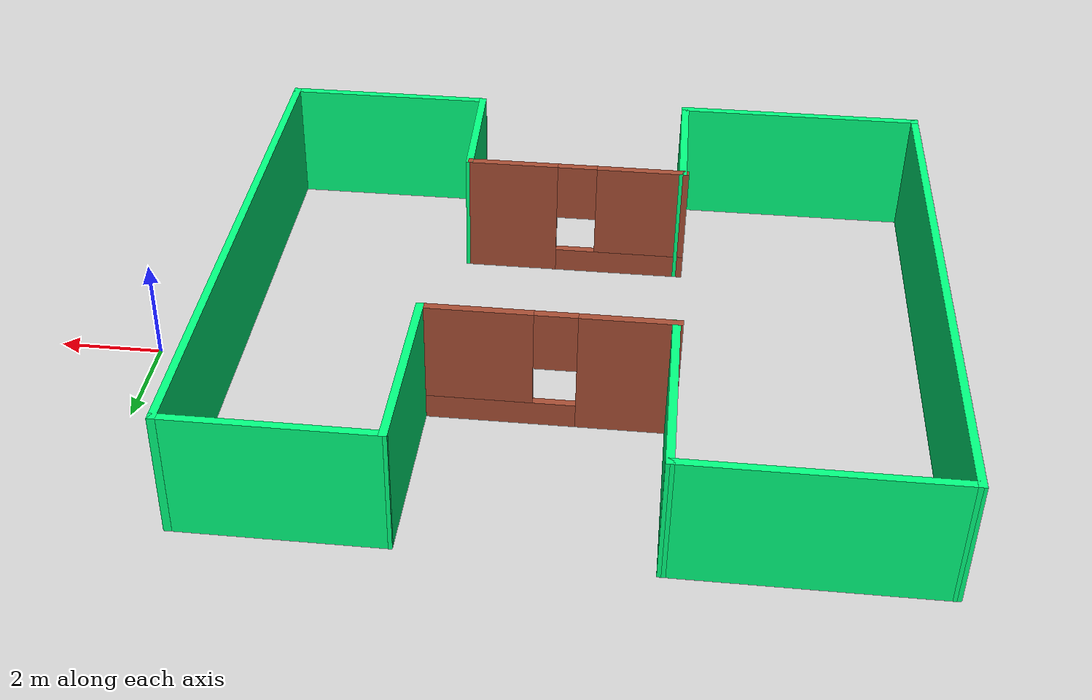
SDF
<?xml version='1.0'?>
<sdf version='1.6'>
  <model name='singleFloor'>
    <pose frame=''>-8.21841 -0.734803 0 0 -0 0</pose>
    <link name='Wall_15'>
      <collision name='Wall_15_Collision'>
        <geometry>
          <box>
            <size>11.75 0.15 2.5</size>
          </box>
        </geometry>
        <pose frame=''>0 0 1.25 0 -0 0</pose>
      </collision>
      <visual name='Wall_15_Visual'>
        <pose frame=''>0 0 1.25 0 -0 0</pose>
        <geometry>
          <box>
            <size>11.75 0.15 2.5</size>
          </box>
        </geometry>
        <material>
          <script>
            <uri>file://media/materials/scripts/gazebo.material</uri>
            <name>Gazebo/Grey</name>
          </script>
          <ambient>0 1 0.498039 1</ambient>
        </material>
        <meta>
          <layer>0</layer>
        </meta>
      </visual>
      <pose frame=''>-6.66822 0.000135 0 0 -0 1.5708</pose>
    </link>
    <link name='Wall_18'>
      <collision name='Wall_18_Collision'>
        <geometry>
          <box>
            <size>5 0.15 2.5</size>
          </box>
        </geometry>
        <pose frame=''>0 0 1.25 0 -0 0</pose>
      </collision>
      <visual name='Wall_18_Visual'>
        <pose frame=''>0 0 1.25 0 -0 0</pose>
        <geometry>
          <box>
            <size>5 0.15 2.5</size>
          </box>
        </geometry>
        <material>
          <script>
            <uri>file://media/materials/scripts/gazebo.material</uri>
            <name>Gazebo/Grey</name>
          </script>
          <ambient>0 1 0.498039 1</ambient>
        </material>
        <meta>
          <layer>0</layer>
        </meta>
      </visual>
      <pose frame=''>-4.2434 5.79997 0 0 0 -6.8e-05</pose>
    </link>
    <link name='Wall_20'>
      <collision name='Wall_20_Collision'>
        <geometry>
          <box>
            <size>3.89387 0.15 2.5</size>
          </box>
        </geometry>
        <pose frame=''>0 0 1.25 0 -0 0</pose>
      </collision>
      <visual name='Wall_20_Visual'>
        <pose frame=''>0 0 1.25 0 -0 0</pose>
        <geometry>
          <box>
            <size>3.89387 0.15 2.5</size>
          </box>
        </geometry>
        <material>
          <script>
            <uri>file://media/materials/scripts/gazebo.material</uri>
            <name>Gazebo/Grey</name>
          </script>
          <ambient>0 1 0.498039 1</ambient>
        </material>
        <meta>
          <layer>0</layer>
        </meta>
      </visual>
      <pose frame=''>-1.82335 3.92788 0 0 0 -1.57334</pose>
    </link>
    <link name='Wall_21'>
      <pose frame=''>0.42536 2.05595 0 0 -0 0</pose>
      <visual name='Wall_21_Visual_0'>
        <pose frame=''>-1.44583 0 1.25 0 -0 0</pose>
        <geometry>
          <box>
            <size>1.85834 0.15 2.5</size>
          </box>
        </geometry>
        <material>
          <script>
            <uri>file://media/materials/scripts/gazebo.material</uri>
            <name>Gazebo/Bricks</name>
          </script>
          <ambient>0 1 0.498039 1</ambient>
        </material>
        <meta>
          <layer>0</layer>
        </meta>
      </visual>
      <collision name='Wall_21_Collision_0'>
        <geometry>
          <box>
            <size>1.85834 0.15 2.5</size>
          </box>
        </geometry>
        <pose frame=''>-1.44583 0 1.25 0 -0 0</pose>
      </collision>
      <visual name='Wall_21_Visual_1'>
        <pose frame=''>0.929169 0 0.25 0 -0 0</pose>
        <geometry>
          <box>
            <size>2.89166 0.15 0.5</size>
          </box>
        </geometry>
        <material>
          <script>
            <uri>file://media/materials/scripts/gazebo.material</uri>
            <name>Gazebo/Bricks</name>
          </script>
          <ambient>0 1 0.498039 1</ambient>
        </material>
        <meta>
          <layer>0</layer>
        </meta>
      </visual>
      <collision name='Wall_21_Collision_1'>
        <geometry>
          <box>
            <size>2.89166 0.15 0.5</size>
          </box>
        </geometry>
        <pose frame=''>0.929169 0 0.25 0 -0 0</pose>
      </collision>
      <visual name='Wall_21_Visual_2'>
        <pose frame=''>1.32917 0 1.5 0 -0 0</pose>
        <geometry>
          <box>
            <size>2.09166 0.15 2</size>
          </box>
        </geometry>
        <material>
          <script>
            <uri>file://media/materials/scripts/gazebo.material</uri>
            <name>Gazebo/Bricks</name>
          </script>
          <ambient>0 1 0.498039 1</ambient>
        </material>
        <meta>
          <layer>0</layer>
        </meta>
      </visual>
      <collision name='Wall_21_Collision_2'>
        <geometry>
          <box>
            <size>2.09166 0.15 2</size>
          </box>
        </geometry>
        <pose frame=''>1.32917 0 1.5 0 -0 0</pose>
      </collision>
      <visual name='Wall_21_Visual_3'>
        <pose frame=''>-0.116661 0 1.9 0 -0 0</pose>
        <geometry>
          <box>
            <size>0.8 0.15 1.2</size>
          </box>
        </geometry>
        <material>
          <script>
            <uri>file://media/materials/scripts/gazebo.material</uri>
            <name>Gazebo/Bricks</name>
          </script>
          <ambient>0 1 0.498039 1</ambient>
        </material>
        <meta>
          <layer>0</layer>
        </meta>
      </visual>
      <collision name='Wall_21_Collision_3'>
        <geometry>
          <box>
            <size>0.8 0.15 1.2</size>
          </box>
        </geometry>
        <pose frame=''>-0.116661 0 1.9 0 -0 0</pose>
      </collision>
    </link>
    <link name='Wall_22'>
      <collision name='Wall_22_Collision'>
        <geometry>
          <box>
            <size>3.74416 0.15 2.5</size>
          </box>
        </geometry>
        <pose frame=''>0 0 1.25 0 -0 0</pose>
      </collision>
      <visual name='Wall_22_Visual'>
        <pose frame=''>0 0 1.25 0 -0 0</pose>
        <geometry>
          <box>
            <size>3.74416 0.15 2.5</size>
          </box>
        </geometry>
        <material>
          <script>
            <uri>file://media/materials/scripts/gazebo.material</uri>
            <name>Gazebo/Grey</name>
          </script>
          <ambient>0 1 0.498039 1</ambient>
        </material>
        <meta>
          <layer>0</layer>
        </meta>
      </visual>
      <pose frame=''>2.79515 3.85288 0 0 -0 1.55785</pose>
    </link>
    <link name='Wall_23'>
      <collision name='Wall_23_Collision'>
        <geometry>
          <box>
            <size>4 0.15 2.5</size>
          </box>
        </geometry>
        <pose frame=''>0 0 1.25 0 -0 0</pose>
      </collision>
      <visual name='Wall_23_Visual'>
        <pose frame=''>0 0 1.25 0 -0 0</pose>
        <geometry>
          <box>
            <size>4 0.15 2.5</size>
          </box>
        </geometry>
        <material>
          <script>
            <uri>file://media/materials/scripts/gazebo.material</uri>
            <name>Gazebo/Grey</name>
          </script>
          <ambient>0 1 0.498039 1</ambient>
        </material>
        <meta>
          <layer>0</layer>
        </meta>
      </visual>
      <pose frame=''>4.74341 5.6498 0 0 -0 0</pose>
    </link>
    <link name='Wall_25'>
      <collision name='Wall_25_Collision'>
        <geometry>
          <box>
            <size>11.5 0.15 2.5</size>
          </box>
        </geometry>
        <pose frame=''>0 0 1.25 0 -0 0</pose>
      </collision>
      <visual name='Wall_25_Visual'>
        <pose frame=''>0 0 1.25 0 -0 0</pose>
        <geometry>
          <box>
            <size>11.5 0.15 2.5</size>
          </box>
        </geometry>
        <material>
          <script>
            <uri>file://media/materials/scripts/gazebo.material</uri>
            <name>Gazebo/Grey</name>
          </script>
          <ambient>0 1 0.498039 1</ambient>
        </material>
        <meta>
          <layer>0</layer>
        </meta>
      </visual>
      <pose frame=''>6.66841 -0.025197 0 0 0 -1.5708</pose>
    </link>
    <link name='Wall_26'>
      <collision name='Wall_26_Collision'>
        <geometry>
          <box>
            <size>4.25 0.15 2.5</size>
          </box>
        </geometry>
        <pose frame=''>0 0 1.25 0 -0 0</pose>
      </collision>
      <visual name='Wall_26_Visual'>
        <pose frame=''>0 0 1.25 0 -0 0</pose>
        <geometry>
          <box>
            <size>4.25 0.15 2.5</size>
          </box>
        </geometry>
        <material>
          <script>
            <uri>file://media/materials/scripts/gazebo.material</uri>
            <name>Gazebo/Grey</name>
          </script>
          <ambient>0 1 0.498039 1</ambient>
        </material>
        <meta>
          <layer>0</layer>
        </meta>
      </visual>
      <pose frame=''>4.61841 -5.7002 0 0 -0 3.14159</pose>
    </link>
    <link name='Wall_27'>
      <collision name='Wall_27_Collision'>
        <geometry>
          <box>
            <size>2.74427 0.15 2.5</size>
          </box>
        </geometry>
        <pose frame=''>0 0 1.25 0 -0 0</pose>
      </collision>
      <visual name='Wall_27_Visual'>
        <pose frame=''>0 0 1.25 0 -0 0</pose>
        <geometry>
          <box>
            <size>2.74427 0.15 2.5</size>
          </box>
        </geometry>
        <material>
          <script>
            <uri>file://media/materials/scripts/gazebo.material</uri>
            <name>Gazebo/Grey</name>
          </script>
          <ambient>0 1 0.498039 1</ambient>
        </material>
        <meta>
          <layer>0</layer>
        </meta>
      </visual>
      <pose frame=''>2.54515 -4.40327 0 0 -0 1.58873</pose>
    </link>
    <link name='Wall_28'>
      <pose frame=''>0.30036 -3.10634 0 0 -0 3.14159</pose>
      <visual name='Wall_28_Visual_0'>
        <pose frame=''>-1.32917 0 1.25 0 -0 0</pose>
        <geometry>
          <box>
            <size>1.84166 0.15 2.5</size>
          </box>
        </geometry>
        <material>
          <script>
            <uri>file://media/materials/scripts/gazebo.material</uri>
            <name>Gazebo/Bricks</name>
          </script>
          <ambient>0 1 0.498039 1</ambient>
        </material>
        <meta>
          <layer>0</layer>
        </meta>
      </visual>
      <collision name='Wall_28_Collision_0'>
        <geometry>
          <box>
            <size>1.84166 0.15 2.5</size>
          </box>
        </geometry>
        <pose frame=''>-1.32917 0 1.25 0 -0 0</pose>
      </collision>
      <visual name='Wall_28_Visual_1'>
        <pose frame=''>0.920831 0 0.25 0 -0 0</pose>
        <geometry>
          <box>
            <size>2.65834 0.15 0.5</size>
          </box>
        </geometry>
        <material>
          <script>
            <uri>file://media/materials/scripts/gazebo.material</uri>
            <name>Gazebo/Bricks</name>
          </script>
          <ambient>0 1 0.498039 1</ambient>
        </material>
        <meta>
          <layer>0</layer>
        </meta>
      </visual>
      <collision name='Wall_28_Collision_1'>
        <geometry>
          <box>
            <size>2.65834 0.15 0.5</size>
          </box>
        </geometry>
        <pose frame=''>0.920831 0 0.25 0 -0 0</pose>
      </collision>
      <visual name='Wall_28_Visual_2'>
        <pose frame=''>1.32083 0 1.5 0 -0 0</pose>
        <geometry>
          <box>
            <size>1.85834 0.15 2</size>
          </box>
        </geometry>
        <material>
          <script>
            <uri>file://media/materials/scripts/gazebo.material</uri>
            <name>Gazebo/Bricks</name>
          </script>
          <ambient>0 1 0.498039 1</ambient>
        </material>
        <meta>
          <layer>0</layer>
        </meta>
      </visual>
      <collision name='Wall_28_Collision_2'>
        <geometry>
          <box>
            <size>1.85834 0.15 2</size>
          </box>
        </geometry>
        <pose frame=''>1.32083 0 1.5 0 -0 0</pose>
      </collision>
      <visual name='Wall_28_Visual_3'>
        <pose frame=''>-0.008339 0 1.9 0 -0 0</pose>
        <geometry>
          <box>
            <size>0.8 0.15 1.2</size>
          </box>
        </geometry>
        <material>
          <script>
            <uri>file://media/materials/scripts/gazebo.material</uri>
            <name>Gazebo/Bricks</name>
          </script>
          <ambient>0 1 0.498039 1</ambient>
        </material>
        <meta>
          <layer>0</layer>
        </meta>
      </visual>
      <collision name='Wall_28_Collision_3'>
        <geometry>
          <box>
            <size>0.8 0.15 1.2</size>
          </box>
        </geometry>
        <pose frame=''>-0.008339 0 1.9 0 -0 0</pose>
      </collision>
    </link>
    <link name='Wall_29'>
      <collision name='Wall_29_Collision'>
        <geometry>
          <box>
            <size>2.84354 0.15 2.5</size>
          </box>
        </geometry>
        <pose frame=''>0 0 1.25 0 -0 0</pose>
      </collision>
      <visual name='Wall_29_Visual'>
        <pose frame=''>0 0 1.25 0 -0 0</pose>
        <geometry>
          <box>
            <size>2.84354 0.15 2.5</size>
          </box>
        </geometry>
        <material>
          <script>
            <uri>file://media/materials/scripts/gazebo.material</uri>
            <name>Gazebo/Grey</name>
          </script>
          <ambient>0 1 0.498039 1</ambient>
        </material>
        <meta>
          <layer>0</layer>
        </meta>
      </visual>
      <pose frame=''>-1.82317 -4.4531 0 0 0 -1.56712</pose>
    </link>
    <link name='Wall_30'>
      <collision name='Wall_30_Collision'>
        <geometry>
          <box>
            <size>5 0.15 2.5</size>
          </box>
        </geometry>
        <pose frame=''>0 0 1.25 0 -0 0</pose>
      </collision>
      <visual name='Wall_30_Visual'>
        <pose frame=''>0 0 1.25 0 -0 0</pose>
        <geometry>
          <box>
            <size>5 0.15 2.5</size>
          </box>
        </geometry>
        <material>
          <script>
            <uri>file://media/materials/scripts/gazebo.material</uri>
            <name>Gazebo/Grey</name>
          </script>
          <ambient>0 1 0.498039 1</ambient>
        </material>
        <meta>
          <layer>0</layer>
        </meta>
      </visual>
      <pose frame=''>-4.24322 -5.79986 0 0 -0 3.14159</pose>
    </link>
    <static>1</static>
  </model>
</sdf>
